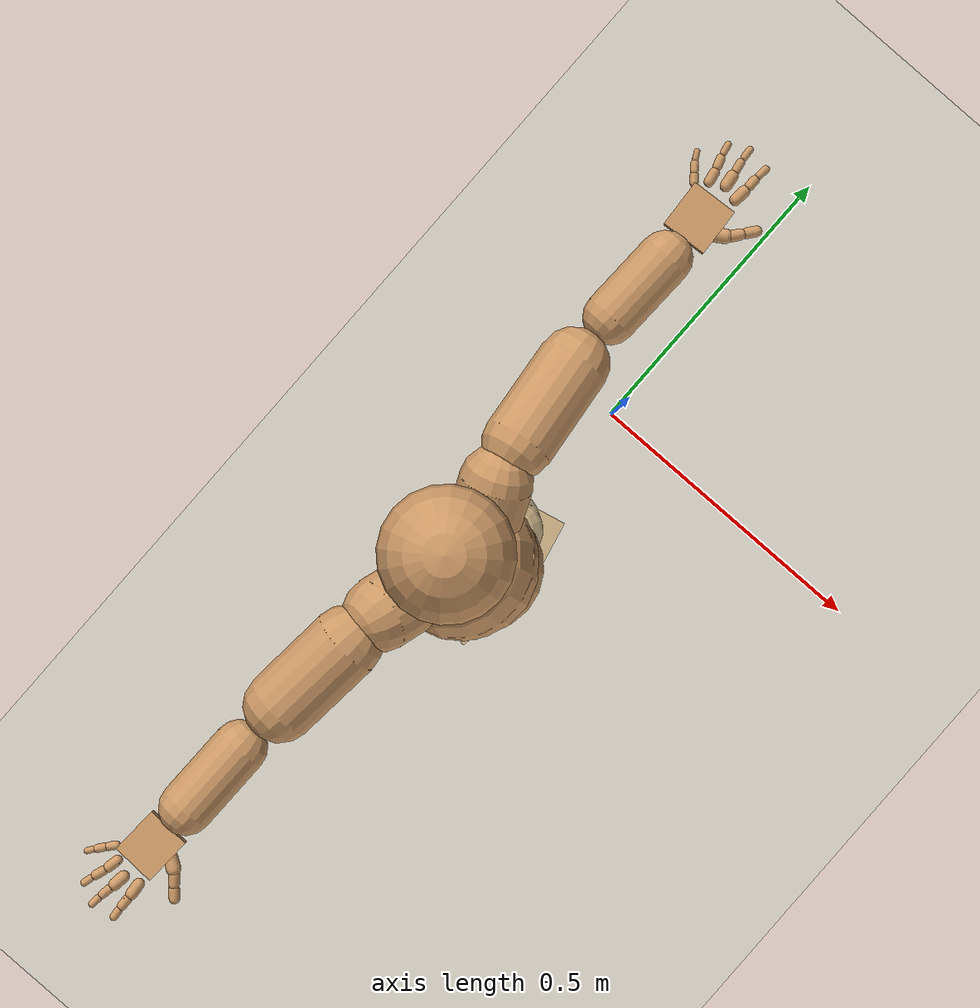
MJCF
<mujoco model="humanoid">
  <compiler coordinate="local" angle="radian"/>
  <default>
    <joint damping="0.0" armature="0.01" stiffness="0.0" limited="true"/>
    <geom conaffinity="1" condim="3" contype="7" margin="0.001" rgba="0.8 0.6 .4 1"/>
  </default>
  <asset>
    <texture type="skybox" builtin="gradient" rgb1=".4 .5 .6" rgb2="0 0 0" width="100" height="100"/>
    <texture builtin="flat" height="1278" mark="cross" markrgb="1 1 1" name="texgeom" random="0.01" rgb1="0.8 0.6 0.4" rgb2="0.8 0.6 0.4" type="cube" width="127"/>
    <texture builtin="checker" height="100" name="texplane" rgb1="0 0 0" rgb2="0.8 0.8 0.8" type="2d" width="100"/>
    <material name="MatPlane" reflectance="0.5" shininess="1" specular="1" texrepeat="60 60" texture="texplane"/>
    <material name="geom" texture="texgeom" texuniform="true"/>
  </asset>
  <worldbody>
    <light cutoff="100" diffuse="1 1 1" dir="-0 0 -1.3" directional="true" exponent="1" pos="0 0 1.3" specular=".1 .1 .1"/>
    <geom conaffinity="1" condim="3" name="floor" pos="0 0 0" rgba="0.8 0.9 0.8 1" size="100 100 .2" type="plane" material="MatPlane"/>
    <body name="Pelvis" pos="0.0004 -0.3375 0.0305">
      <freejoint name="Pelvis"/>
      <geom type="sphere" contype="1" conaffinity="1" density="500" size="0.1087" pos="0.0000 0.0000 0.0000" name="Pelvis"/>
      <body name="L_Hip" pos="0.0053 0.0766 -0.0887">
        <joint name="L_Hip_x" type="hinge" pos="0 0 0" axis="1 0 0" stiffness="800" damping="80" armature="0.02" range="-180.0000 180.0000"/>
        <joint name="L_Hip_y" type="hinge" pos="0 0 0" axis="0 1 0" stiffness="800" damping="80" armature="0.02" range="-180.0000 180.0000"/>
        <joint name="L_Hip_z" type="hinge" pos="0 0 0" axis="0 0 1" stiffness="800" damping="80" armature="0.02" range="-180.0000 180.0000"/>
        <geom type="capsule" contype="1" conaffinity="1" density="500" fromto="-0.0043 0.0033 -0.0650 -0.0171 0.0133 -0.2598" size="0.0566" name="L_Hip"/>
        <body name="L_Knee" pos="-0.0214 0.0166 -0.3248">
          <joint name="L_Knee_x" type="hinge" pos="0 0 0" axis="1 0 0" stiffness="800" damping="80" armature="0.02" range="-180.0000 180.0000"/>
          <joint name="L_Knee_y" type="hinge" pos="0 0 0" axis="0 1 0" stiffness="800" damping="80" armature="0.02" range="-180.0000 180.0000"/>
          <joint name="L_Knee_z" type="hinge" pos="0 0 0" axis="0 0 1" stiffness="800" damping="80" armature="0.02" range="-180.0000 180.0000"/>
          <geom type="capsule" contype="1" conaffinity="1" density="500" fromto="-0.0043 -0.0020 -0.0695 -0.0170 -0.0082 -0.2779" size="0.0525" name="L_Knee"/>
          <body name="L_Ankle" pos="-0.0213 -0.0102 -0.3474">
            <joint name="L_Ankle_x" type="hinge" pos="0 0 0" axis="1 0 0" stiffness="800" damping="80" armature="0.02" range="-180.0000 180.0000"/>
            <joint name="L_Ankle_y" type="hinge" pos="0 0 0" axis="0 1 0" stiffness="800" damping="80" armature="0.02" range="-180.0000 180.0000"/>
            <joint name="L_Ankle_z" type="hinge" pos="0 0 0" axis="0 0 1" stiffness="800" damping="80" armature="0.02" range="-180.0000 180.0000"/>
            <geom type="box" contype="1" conaffinity="1" density="500" pos="0.0507 0.0114 -0.0194" size="0.0796 0.0472 0.0195" quat="0.9939 0.0000 0.0000 0.1107" name="L_Ankle"/>
            <body name="L_Toe" pos="0.1014 0.0229 -0.0387">
              <joint name="L_Toe_x" type="hinge" pos="0 0 0" axis="1 0 0" stiffness="500" damping="50" armature="0.02" range="-180.0000 180.0000"/>
              <joint name="L_Toe_y" type="hinge" pos="0 0 0" axis="0 1 0" stiffness="500" damping="50" armature="0.02" range="-180.0000 180.0000"/>
              <joint name="L_Toe_z" type="hinge" pos="0 0 0" axis="0 0 1" stiffness="500" damping="50" armature="0.02" range="-180.0000 180.0000"/>
              <geom type="box" contype="1" conaffinity="1" density="500" pos="0.0000 0.0000 0.0202" size="0.0009 0.0023 0.001" quat="0.9930 0.0000 0.0000 0.1177" name="L_Toe"/>
            </body>
          </body>
        </body>
      </body>
      <body name="R_Hip" pos="0.0034 -0.0753 -0.0943">
        <joint name="R_Hip_x" type="hinge" pos="0 0 0" axis="1 0 0" stiffness="800" damping="80" armature="0.02" range="-180.0000 180.0000"/>
        <joint name="R_Hip_y" type="hinge" pos="0 0 0" axis="0 1 0" stiffness="800" damping="80" armature="0.02" range="-180.0000 180.0000"/>
        <joint name="R_Hip_z" type="hinge" pos="0 0 0" axis="0 0 1" stiffness="800" damping="80" armature="0.02" range="-180.0000 180.0000"/>
        <geom type="capsule" contype="1" conaffinity="1" density="500" fromto="-0.0029 -0.0041 -0.0643 -0.0117 -0.0164 -0.2570" size="0.0564" name="R_Hip"/>
        <body name="R_Knee" pos="-0.0146 -0.0206 -0.3213">
          <joint name="R_Knee_x" type="hinge" pos="0 0 0" axis="1 0 0" stiffness="800" damping="80" armature="0.02" range="-180.0000 180.0000"/>
          <joint name="R_Knee_y" type="hinge" pos="0 0 0" axis="0 1 0" stiffness="800" damping="80" armature="0.02" range="-180.0000 180.0000"/>
          <joint name="R_Knee_z" type="hinge" pos="0 0 0" axis="0 0 1" stiffness="800" damping="80" armature="0.02" range="-180.0000 180.0000"/>
          <geom type="capsule" contype="1" conaffinity="1" density="500" fromto="-0.0036 0.0010 -0.0678 -0.0145 0.0041 -0.2711" size="0.0524" name="R_Knee"/>
          <body name="R_Ankle" pos="-0.0181 0.0051 -0.3389">
            <joint name="R_Ankle_x" type="hinge" pos="0 0 0" axis="1 0 0" stiffness="800" damping="80" armature="0.02" range="-180.0000 180.0000"/>
            <joint name="R_Ankle_y" type="hinge" pos="0 0 0" axis="0 1 0" stiffness="800" damping="80" armature="0.02" range="-180.0000 180.0000"/>
            <joint name="R_Ankle_z" type="hinge" pos="0 0 0" axis="0 0 1" stiffness="800" damping="80" armature="0.02" range="-180.0000 180.0000"/>
            <geom type="box" contype="1" conaffinity="1" density="500" pos="0.0479 -0.0094 -0.0209" size="0.0796 0.0472 0.0195" quat="0.9953 0.0000 0.0000 -0.0964" name="R_Ankle"/>
            <body name="R_Toe" pos="0.0958 -0.0187 -0.0419">
              <joint name="R_Toe_x" type="hinge" pos="0 0 0" axis="1 0 0" stiffness="500" damping="50" armature="0.02" range="-180.0000 180.0000"/>
              <joint name="R_Toe_y" type="hinge" pos="0 0 0" axis="0 1 0" stiffness="500" damping="50" armature="0.02" range="-180.0000 180.0000"/>
              <joint name="R_Toe_z" type="hinge" pos="0 0 0" axis="0 0 1" stiffness="500" damping="50" armature="0.02" range="-180.0000 180.0000"/>
              <geom type="box" contype="1" conaffinity="1" density="500" pos="0.0000 0.0000 0.0218" size="0.0009 0.0023 0.001" quat="0.9964 0.0000 0.0000 -0.0846" name="R_Toe"/>
            </body>
          </body>
        </body>
      </body>
      <body name="Torso" pos="-0.0373 -0.0062 0.1031">
        <joint name="Torso_x" type="hinge" pos="0 0 0" axis="1 0 0" stiffness="1000" damping="100" armature="0.02" range="-180.0000 180.0000"/>
        <joint name="Torso_y" type="hinge" pos="0 0 0" axis="0 1 0" stiffness="1000" damping="100" armature="0.02" range="-180.0000 180.0000"/>
        <joint name="Torso_z" type="hinge" pos="0 0 0" axis="0 0 1" stiffness="1000" damping="100" armature="0.02" range="-180.0000 180.0000"/>
        <geom type="capsule" contype="1" conaffinity="1" density="500" fromto="-0.0093 0.0091 0.0601 -0.0062 0.0061 0.0401" size="0.0858" name="Torso"/>
        <body name="Spine" pos="-0.0155 0.0152 0.1002">
          <joint name="Spine_x" type="hinge" pos="0 0 0" axis="1 0 0" stiffness="1000" damping="100" armature="0.02" range="-180.0000 180.0000"/>
          <joint name="Spine_y" type="hinge" pos="0 0 0" axis="0 1 0" stiffness="1000" damping="100" armature="0.02" range="-180.0000 180.0000"/>
          <joint name="Spine_z" type="hinge" pos="0 0 0" axis="0 0 1" stiffness="1000" damping="100" armature="0.02" range="-180.0000 180.0000"/>
          <geom type="capsule" contype="1" conaffinity="1" density="500" fromto="0.0284 -0.0057 0.0236 0.0189 -0.0038 0.0158" size="0.0697" name="Spine"/>
          <body name="Chest" pos="0.0474 -0.0095 0.0394">
            <joint name="Chest_x" type="hinge" pos="0 0 0" axis="1 0 0" stiffness="1000" damping="100" armature="0.02" range="-180.0000 180.0000"/>
            <joint name="Chest_y" type="hinge" pos="0 0 0" axis="0 1 0" stiffness="1000" damping="100" armature="0.02" range="-180.0000 180.0000"/>
            <joint name="Chest_z" type="hinge" pos="0 0 0" axis="0 0 1" stiffness="1000" damping="100" armature="0.02" range="-180.0000 180.0000"/>
            <geom type="capsule" contype="1" conaffinity="1" density="500" fromto="-0.0267 -0.0017 0.0901 -0.0178 -0.0011 0.0601" size="0.1169" name="Chest"/>
            <body name="Neck" pos="-0.0639 -0.0061 0.2091">
              <joint name="Neck_x" type="hinge" pos="0 0 0" axis="1 0 0" stiffness="500" damping="50" armature="0.02" range="-180.0000 180.0000"/>
              <joint name="Neck_y" type="hinge" pos="0 0 0" axis="0 1 0" stiffness="500" damping="50" armature="0.02" range="-180.0000 180.0000"/>
              <joint name="Neck_z" type="hinge" pos="0 0 0" axis="0 0 1" stiffness="500" damping="50" armature="0.02" range="-180.0000 180.0000"/>
              <geom type="capsule" contype="1" conaffinity="1" density="500" fromto="0.0041 0.0019 0.0264 0.0163 0.0074 0.1054" size="0.042" name="Neck"/>
              <body name="Head" pos="0.0204 0.0093 0.1318">
                <joint name="Head_x" type="hinge" pos="0 0 0" axis="1 0 0" stiffness="500" damping="50" armature="0.02" range="-180.0000 180.0000"/>
                <joint name="Head_y" type="hinge" pos="0 0 0" axis="0 1 0" stiffness="500" damping="50" armature="0.02" range="-180.0000 180.0000"/>
                <joint name="Head_z" type="hinge" pos="0 0 0" axis="0 0 1" stiffness="500" damping="50" armature="0.02" range="-180.0000 180.0000"/>
                <geom type="sphere" contype="1" conaffinity="1" density="500" size="0.0969" pos="0.0000 0.0000 0.0000" name="Head"/>
              </body>
            </body>
            <body name="L_Thorax" pos="-0.0309 0.057 0.1229">
              <joint name="L_Thorax_x" type="hinge" pos="0 0 0" axis="1 0 0" stiffness="500" damping="50" armature="0.02" range="-180.0000 180.0000"/>
              <joint name="L_Thorax_y" type="hinge" pos="0 0 0" axis="0 1 0" stiffness="500" damping="50" armature="0.02" range="-180.0000 180.0000"/>
              <joint name="L_Thorax_z" type="hinge" pos="0 0 0" axis="0 0 1" stiffness="500" damping="50" armature="0.02" range="-180.0000 180.0000"/>
              <geom type="capsule" contype="1" conaffinity="1" density="500" fromto="-0.0073 0.0167 0.0087 -0.0291 0.0667 0.0349" size="0.0553" name="L_Thorax"/>
              <body name="L_Shoulder" pos="-0.0364 0.0834 0.0436">
                <joint name="L_Shoulder_x" type="hinge" pos="0 0 0" axis="1 0 0" stiffness="500" damping="50" armature="0.02" range="-180.0000 180.0000"/>
                <joint name="L_Shoulder_y" type="hinge" pos="0 0 0" axis="0 1 0" stiffness="500" damping="50" armature="0.02" range="-180.0000 180.0000"/>
                <joint name="L_Shoulder_z" type="hinge" pos="0 0 0" axis="0 0 1" stiffness="500" damping="50" armature="0.02" range="-180.0000 180.0000"/>
                <geom type="capsule" contype="1" conaffinity="1" density="500" fromto="-0.0054 0.0471 -0.0084 -0.0216 0.1883 -0.0338" size="0.0544" name="L_Shoulder"/>
                <body name="L_Elbow" pos="-0.027 0.2354 -0.0422">
                  <joint name="L_Elbow_x" type="hinge" pos="0 0 0" axis="1 0 0" stiffness="500" damping="50" armature="0.02" range="-720.0000 720.0000"/>
                  <joint name="L_Elbow_y" type="hinge" pos="0 0 0" axis="0 1 0" stiffness="500" damping="50" armature="0.02" range="-720.0000 720.0000"/>
                  <joint name="L_Elbow_z" type="hinge" pos="0 0 0" axis="0 0 1" stiffness="500" damping="50" armature="0.02" range="-720.0000 720.0000"/>
                  <geom type="capsule" contype="1" conaffinity="1" density="500" fromto="0.0014 0.0396 0.0018 0.0054 0.1583 0.0073" size="0.0408" name="L_Elbow"/>
                  <body name="L_Wrist" pos="0.0068 0.1979 0.0091">
                    <joint name="L_Wrist_x" type="hinge" pos="0 0 0" axis="1 0 0" stiffness="300" damping="30" armature="0.02" range="-180.0000 180.0000"/>
                    <joint name="L_Wrist_y" type="hinge" pos="0 0 0" axis="0 1 0" stiffness="300" damping="30" armature="0.02" range="-180.0000 180.0000"/>
                    <joint name="L_Wrist_z" type="hinge" pos="0 0 0" axis="0 0 1" stiffness="300" damping="30" armature="0.02" range="-180.0000 180.0000"/>
                    <geom type="box" contype="1" conaffinity="1" density="500" pos="-0.0024 0.0369 -0.0073" size="0.0378 0.0364 0.0071" quat="0.7299 0.0000 0.0000 -0.6836" name="L_Wrist"/>
                    <body name="L_Index1" pos="0.0194 0.0876 -0.0118">
                      <joint name="L_Index1_x" type="hinge" pos="0 0 0" axis="1 0 0" stiffness="100" damping="10" armature="0.02" range="-180.0000 180.0000"/>
                      <joint name="L_Index1_y" type="hinge" pos="0 0 0" axis="0 1 0" stiffness="100" damping="10" armature="0.02" range="-180.0000 180.0000"/>
                      <joint name="L_Index1_z" type="hinge" pos="0 0 0" axis="0 0 1" stiffness="100" damping="10" armature="0.02" range="-180.0000 180.0000"/>
                      <geom type="capsule" contype="1" conaffinity="1" density="500" fromto="0.0005 0.0059 0.0006 0.0021 0.0236 0.0023" size="0.0089" name="L_Index1"/>
                      <body name="L_Index2" pos="0.0026 0.0295 0.0029">
                        <joint name="L_Index2_x" type="hinge" pos="0 0 0" axis="1 0 0" stiffness="100" damping="10" armature="0.02" range="-180.0000 180.0000"/>
                        <joint name="L_Index2_y" type="hinge" pos="0 0 0" axis="0 1 0" stiffness="100" damping="10" armature="0.02" range="-180.0000 180.0000"/>
                        <joint name="L_Index2_z" type="hinge" pos="0 0 0" axis="0 0 1" stiffness="100" damping="10" armature="0.02" range="-180.0000 180.0000"/>
                        <geom type="capsule" contype="1" conaffinity="1" density="500" fromto="0.0001 0.0042 -0.0002 0.0002 0.0167 -0.0010" size="0.0072" name="L_Index2"/>
                        <body name="L_Index3" pos="0.0003 0.0208 -0.0012">
                          <joint name="L_Index3_x" type="hinge" pos="0 0 0" axis="1 0 0" stiffness="100" damping="10" armature="0.02" range="-180.0000 180.0000"/>
                          <joint name="L_Index3_y" type="hinge" pos="0 0 0" axis="0 1 0" stiffness="100" damping="10" armature="0.02" range="-180.0000 180.0000"/>
                          <joint name="L_Index3_z" type="hinge" pos="0 0 0" axis="0 0 1" stiffness="100" damping="10" armature="0.02" range="-180.0000 180.0000"/>
                          <geom type="capsule" contype="1" conaffinity="1" density="500" fromto="0.0005 0.0046 0.0002 0.0018 0.0183 0.0006" size="0.0059" name="L_Index3"/>
                        </body>
                      </body>
                    </body>
                    <body name="L_Middle1" pos="-0.0033 0.0941 -0.0096">
                      <joint name="L_Middle1_x" type="hinge" pos="0 0 0" axis="1 0 0" stiffness="100" damping="10" armature="0.02" range="-180.0000 180.0000"/>
                      <joint name="L_Middle1_y" type="hinge" pos="0 0 0" axis="0 1 0" stiffness="100" damping="10" armature="0.02" range="-180.0000 180.0000"/>
                      <joint name="L_Middle1_z" type="hinge" pos="0 0 0" axis="0 0 1" stiffness="100" damping="10" armature="0.02" range="-180.0000 180.0000"/>
                      <geom type="capsule" contype="1" conaffinity="1" density="500" fromto="-0.0008 0.0056 0.0003 -0.0031 0.0223 0.0012" size="0.0092" name="L_Middle1"/>
                      <body name="L_Middle2" pos="-0.0039 0.0279 0.0015">
                        <joint name="L_Middle2_x" type="hinge" pos="0 0 0" axis="1 0 0" stiffness="100" damping="10" armature="0.02" range="-180.0000 180.0000"/>
                        <joint name="L_Middle2_y" type="hinge" pos="0 0 0" axis="0 1 0" stiffness="100" damping="10" armature="0.02" range="-180.0000 180.0000"/>
                        <joint name="L_Middle2_z" type="hinge" pos="0 0 0" axis="0 0 1" stiffness="100" damping="10" armature="0.02" range="-180.0000 180.0000"/>
                        <geom type="capsule" contype="1" conaffinity="1" density="500" fromto="-0.0007 0.0043 -0.0001 -0.0030 0.0172 -0.0004" size="0.0067" name="L_Middle2"/>
                        <body name="L_Middle3" pos="-0.0037 0.0215 -0.0005">
                          <joint name="L_Middle3_x" type="hinge" pos="0 0 0" axis="1 0 0" stiffness="100" damping="10" armature="0.02" range="-180.0000 180.0000"/>
                          <joint name="L_Middle3_y" type="hinge" pos="0 0 0" axis="0 1 0" stiffness="100" damping="10" armature="0.02" range="-180.0000 180.0000"/>
                          <joint name="L_Middle3_z" type="hinge" pos="0 0 0" axis="0 0 1" stiffness="100" damping="10" armature="0.02" range="-180.0000 180.0000"/>
                          <geom type="capsule" contype="1" conaffinity="1" density="500" fromto="-0.0003 0.0047 0.0003 -0.0014 0.0188 0.0012" size="0.0055" name="L_Middle3"/>
                        </body>
                      </body>
                    </body>
                    <body name="L_Pinky1" pos="-0.0405 0.071 -0.0181">
                      <joint name="L_Pinky1_x" type="hinge" pos="0 0 0" axis="1 0 0" stiffness="100" damping="10" armature="0.02" range="-180.0000 180.0000"/>
                      <joint name="L_Pinky1_y" type="hinge" pos="0 0 0" axis="0 1 0" stiffness="100" damping="10" armature="0.02" range="-180.0000 180.0000"/>
                      <joint name="L_Pinky1_z" type="hinge" pos="0 0 0" axis="0 0 1" stiffness="100" damping="10" armature="0.02" range="-180.0000 180.0000"/>
                      <geom type="capsule" contype="1" conaffinity="1" density="500" fromto="-0.0023 0.0027 -0.0001 -0.0092 0.0110 -0.0004" size="0.0065" name="L_Pinky1"/>
                      <body name="L_Pinky2" pos="-0.0115 0.0137 -0.0005">
                        <joint name="L_Pinky2_x" type="hinge" pos="0 0 0" axis="1 0 0" stiffness="100" damping="10" armature="0.02" range="-180.0000 180.0000"/>
                        <joint name="L_Pinky2_y" type="hinge" pos="0 0 0" axis="0 1 0" stiffness="100" damping="10" armature="0.02" range="-180.0000 180.0000"/>
                        <joint name="L_Pinky2_z" type="hinge" pos="0 0 0" axis="0 0 1" stiffness="100" damping="10" armature="0.02" range="-180.0000 180.0000"/>
                        <geom type="capsule" contype="1" conaffinity="1" density="500" fromto="-0.0022 0.0028 -0.0002 -0.0086 0.0112 -0.0008" size="0.0063" name="L_Pinky2"/>
                        <body name="L_Pinky3" pos="-0.0108 0.014 -0.001">
                          <joint name="L_Pinky3_x" type="hinge" pos="0 0 0" axis="1 0 0" stiffness="100" damping="10" armature="0.02" range="-180.0000 180.0000"/>
                          <joint name="L_Pinky3_y" type="hinge" pos="0 0 0" axis="0 1 0" stiffness="100" damping="10" armature="0.02" range="-180.0000 180.0000"/>
                          <joint name="L_Pinky3_z" type="hinge" pos="0 0 0" axis="0 0 1" stiffness="100" damping="10" armature="0.02" range="-180.0000 180.0000"/>
                          <geom type="capsule" contype="1" conaffinity="1" density="500" fromto="-0.0018 0.0032 0.0002 -0.0070 0.0128 0.0008" size="0.0046" name="L_Pinky3"/>
                        </body>
                      </body>
                    </body>
                    <body name="L_Ring1" pos="-0.0256 0.0831 -0.0127">
                      <joint name="L_Ring1_x" type="hinge" pos="0 0 0" axis="1 0 0" stiffness="100" damping="10" armature="0.02" range="-180.0000 180.0000"/>
                      <joint name="L_Ring1_y" type="hinge" pos="0 0 0" axis="0 1 0" stiffness="100" damping="10" armature="0.02" range="-180.0000 180.0000"/>
                      <joint name="L_Ring1_z" type="hinge" pos="0 0 0" axis="0 0 1" stiffness="100" damping="10" armature="0.02" range="-180.0000 180.0000"/>
                      <geom type="capsule" contype="1" conaffinity="1" density="500" fromto="-0.0011 0.0051 0.0003 -0.0042 0.0204 0.0013" size="0.0079" name="L_Ring1"/>
                      <body name="L_Ring2" pos="-0.0053 0.0256 0.0017">
                        <joint name="L_Ring2_x" type="hinge" pos="0 0 0" axis="1 0 0" stiffness="100" damping="10" armature="0.02" range="-180.0000 180.0000"/>
                        <joint name="L_Ring2_y" type="hinge" pos="0 0 0" axis="0 1 0" stiffness="100" damping="10" armature="0.02" range="-180.0000 180.0000"/>
                        <joint name="L_Ring2_z" type="hinge" pos="0 0 0" axis="0 0 1" stiffness="100" damping="10" armature="0.02" range="-180.0000 180.0000"/>
                        <geom type="capsule" contype="1" conaffinity="1" density="500" fromto="-0.0014 0.0041 -0.0002 -0.0055 0.0166 -0.0009" size="0.0071" name="L_Ring2"/>
                        <body name="L_Ring3" pos="-0.0068 0.0207 -0.0011">
                          <joint name="L_Ring3_x" type="hinge" pos="0 0 0" axis="1 0 0" stiffness="100" damping="10" armature="0.02" range="-180.0000 180.0000"/>
                          <joint name="L_Ring3_y" type="hinge" pos="0 0 0" axis="0 1 0" stiffness="100" damping="10" armature="0.02" range="-180.0000 180.0000"/>
                          <joint name="L_Ring3_z" type="hinge" pos="0 0 0" axis="0 0 1" stiffness="100" damping="10" armature="0.02" range="-180.0000 180.0000"/>
                          <geom type="capsule" contype="1" conaffinity="1" density="500" fromto="-0.0010 0.0045 0.0002 -0.0039 0.0182 0.0007" size="0.0053" name="L_Ring3"/>
                        </body>
                      </body>
                    </body>
                    <body name="L_Thumb1" pos="0.0258 0.0333 -0.0203">
                      <joint name="L_Thumb1_x" type="hinge" pos="0 0 0" axis="1 0 0" stiffness="100" damping="10" armature="0.02" range="-180.0000 180.0000"/>
                      <joint name="L_Thumb1_y" type="hinge" pos="0 0 0" axis="0 1 0" stiffness="100" damping="10" armature="0.02" range="-180.0000 180.0000"/>
                      <joint name="L_Thumb1_z" type="hinge" pos="0 0 0" axis="0 0 1" stiffness="100" damping="10" armature="0.02" range="-180.0000 180.0000"/>
                      <geom type="capsule" contype="1" conaffinity="1" density="500" fromto="0.0045 0.0029 0.0003 0.0179 0.0116 0.0010" size="0.0111" name="L_Thumb1"/>
                      <body name="L_Thumb2" pos="0.0224 0.0145 0.0013">
                        <joint name="L_Thumb2_x" type="hinge" pos="0 0 0" axis="1 0 0" stiffness="100" damping="10" armature="0.02" range="-180.0000 180.0000"/>
                        <joint name="L_Thumb2_y" type="hinge" pos="0 0 0" axis="0 1 0" stiffness="100" damping="10" armature="0.02" range="-180.0000 180.0000"/>
                        <joint name="L_Thumb2_z" type="hinge" pos="0 0 0" axis="0 0 1" stiffness="100" damping="10" armature="0.02" range="-180.0000 180.0000"/>
                        <geom type="capsule" contype="1" conaffinity="1" density="500" fromto="0.0026 0.0036 -0.0011 0.0106 0.0145 -0.0043" size="0.0087" name="L_Thumb2"/>
                        <body name="L_Thumb3" pos="0.0132 0.0181 -0.0054">
                          <joint name="L_Thumb3_x" type="hinge" pos="0 0 0" axis="1 0 0" stiffness="100" damping="10" armature="0.02" range="-180.0000 180.0000"/>
                          <joint name="L_Thumb3_y" type="hinge" pos="0 0 0" axis="0 1 0" stiffness="100" damping="10" armature="0.02" range="-180.0000 180.0000"/>
                          <joint name="L_Thumb3_z" type="hinge" pos="0 0 0" axis="0 0 1" stiffness="100" damping="10" armature="0.02" range="-180.0000 180.0000"/>
                          <geom type="capsule" contype="1" conaffinity="1" density="500" fromto="0.0030 0.0040 -0.0007 0.0122 0.0161 -0.0027" size="0.0082" name="L_Thumb3"/>
                        </body>
                      </body>
                    </body>
                  </body>
                </body>
              </body>
            </body>
            <body name="R_Thorax" pos="-0.0388 -0.0594 0.1186">
              <joint name="R_Thorax_x" type="hinge" pos="0 0 0" axis="1 0 0" stiffness="500" damping="50" armature="0.02" range="-180.0000 180.0000"/>
              <joint name="R_Thorax_y" type="hinge" pos="0 0 0" axis="0 1 0" stiffness="500" damping="50" armature="0.02" range="-180.0000 180.0000"/>
              <joint name="R_Thorax_z" type="hinge" pos="0 0 0" axis="0 0 1" stiffness="500" damping="50" armature="0.02" range="-180.0000 180.0000"/>
              <geom type="capsule" contype="1" conaffinity="1" density="500" fromto="-0.0055 -0.0180 0.0091 -0.0220 -0.0719 0.0364" size="0.0567" name="R_Thorax"/>
              <body name="R_Shoulder" pos="-0.0275 -0.0899 0.0454">
                <joint name="R_Shoulder_x" type="hinge" pos="0 0 0" axis="1 0 0" stiffness="500" damping="50" armature="0.02" range="-180.0000 180.0000"/>
                <joint name="R_Shoulder_y" type="hinge" pos="0 0 0" axis="0 1 0" stiffness="500" damping="50" armature="0.02" range="-180.0000 180.0000"/>
                <joint name="R_Shoulder_z" type="hinge" pos="0 0 0" axis="0 0 1" stiffness="500" damping="50" armature="0.02" range="-180.0000 180.0000"/>
                <geom type="capsule" contype="1" conaffinity="1" density="500" fromto="-0.0042 -0.0454 -0.0073 -0.0167 -0.1817 -0.0294" size="0.0549" name="R_Shoulder"/>
                <body name="R_Elbow" pos="-0.0208 -0.2271 -0.0367">
                  <joint name="R_Elbow_x" type="hinge" pos="0 0 0" axis="1 0 0" stiffness="500" damping="50" armature="0.02" range="-720.0000 720.0000"/>
                  <joint name="R_Elbow_y" type="hinge" pos="0 0 0" axis="0 1 0" stiffness="500" damping="50" armature="0.02" range="-720.0000 720.0000"/>
                  <joint name="R_Elbow_z" type="hinge" pos="0 0 0" axis="0 0 1" stiffness="500" damping="50" armature="0.02" range="-720.0000 720.0000"/>
                  <geom type="capsule" contype="1" conaffinity="1" density="500" fromto="-0.0004 -0.0396 0.0010 -0.0016 -0.1583 0.0041" size="0.0409" name="R_Elbow"/>
                  <body name="R_Wrist" pos="-0.002 -0.1979 0.0051">
                    <joint name="R_Wrist_x" type="hinge" pos="0 0 0" axis="1 0 0" stiffness="300" damping="30" armature="0.02" range="-180.0000 180.0000"/>
                    <joint name="R_Wrist_y" type="hinge" pos="0 0 0" axis="0 1 0" stiffness="300" damping="30" armature="0.02" range="-180.0000 180.0000"/>
                    <joint name="R_Wrist_z" type="hinge" pos="0 0 0" axis="0 0 1" stiffness="300" damping="30" armature="0.02" range="-180.0000 180.0000"/>
                    <geom type="box" contype="1" conaffinity="1" density="500" pos="-0.0016 -0.0365 -0.0067" size="0.0378 0.0341 0.0074" quat="0.7227 0.0000 0.0000 0.6911" name="R_Wrist"/>
                    <body name="R_Index1" pos="0.021 -0.0867 -0.0108">
                      <joint name="R_Index1_x" type="hinge" pos="0 0 0" axis="1 0 0" stiffness="100" damping="10" armature="0.02" range="-180.0000 180.0000"/>
                      <joint name="R_Index1_y" type="hinge" pos="0 0 0" axis="0 1 0" stiffness="100" damping="10" armature="0.02" range="-180.0000 180.0000"/>
                      <joint name="R_Index1_z" type="hinge" pos="0 0 0" axis="0 0 1" stiffness="100" damping="10" armature="0.02" range="-180.0000 180.0000"/>
                      <geom type="capsule" contype="1" conaffinity="1" density="500" fromto="0.0005 -0.0059 0.0006 0.0021 -0.0236 0.0023" size="0.0089" name="R_Index1"/>
                      <body name="R_Index2" pos="0.0026 -0.0295 0.0029">
                        <joint name="R_Index2_x" type="hinge" pos="0 0 0" axis="1 0 0" stiffness="100" damping="10" armature="0.02" range="-180.0000 180.0000"/>
                        <joint name="R_Index2_y" type="hinge" pos="0 0 0" axis="0 1 0" stiffness="100" damping="10" armature="0.02" range="-180.0000 180.0000"/>
                        <joint name="R_Index2_z" type="hinge" pos="0 0 0" axis="0 0 1" stiffness="100" damping="10" armature="0.02" range="-180.0000 180.0000"/>
                        <geom type="capsule" contype="1" conaffinity="1" density="500" fromto="0.0001 -0.0042 -0.0002 0.0002 -0.0167 -0.0010" size="0.0072" name="R_Index2"/>
                        <body name="R_Index3" pos="0.0003 -0.0208 -0.0012">
                          <joint name="R_Index3_x" type="hinge" pos="0 0 0" axis="1 0 0" stiffness="100" damping="10" armature="0.02" range="-180.0000 180.0000"/>
                          <joint name="R_Index3_y" type="hinge" pos="0 0 0" axis="0 1 0" stiffness="100" damping="10" armature="0.02" range="-180.0000 180.0000"/>
                          <joint name="R_Index3_z" type="hinge" pos="0 0 0" axis="0 0 1" stiffness="100" damping="10" armature="0.02" range="-180.0000 180.0000"/>
                          <geom type="capsule" contype="1" conaffinity="1" density="500" fromto="0.0005 -0.0038 0.0002 0.0018 -0.0151 0.0006" size="0.0062" name="R_Index3"/>
                        </body>
                      </body>
                    </body>
                    <body name="R_Middle1" pos="-0.0017 -0.0932 -0.0086">
                      <joint name="R_Middle1_x" type="hinge" pos="0 0 0" axis="1 0 0" stiffness="100" damping="10" armature="0.02" range="-180.0000 180.0000"/>
                      <joint name="R_Middle1_y" type="hinge" pos="0 0 0" axis="0 1 0" stiffness="100" damping="10" armature="0.02" range="-180.0000 180.0000"/>
                      <joint name="R_Middle1_z" type="hinge" pos="0 0 0" axis="0 0 1" stiffness="100" damping="10" armature="0.02" range="-180.0000 180.0000"/>
                      <geom type="capsule" contype="1" conaffinity="1" density="500" fromto="-0.0008 -0.0056 0.0003 -0.0031 -0.0223 0.0012" size="0.0092" name="R_Middle1"/>
                      <body name="R_Middle2" pos="-0.0039 -0.0279 0.0015">
                        <joint name="R_Middle2_x" type="hinge" pos="0 0 0" axis="1 0 0" stiffness="100" damping="10" armature="0.02" range="-180.0000 180.0000"/>
                        <joint name="R_Middle2_y" type="hinge" pos="0 0 0" axis="0 1 0" stiffness="100" damping="10" armature="0.02" range="-180.0000 180.0000"/>
                        <joint name="R_Middle2_z" type="hinge" pos="0 0 0" axis="0 0 1" stiffness="100" damping="10" armature="0.02" range="-180.0000 180.0000"/>
                        <geom type="capsule" contype="1" conaffinity="1" density="500" fromto="-0.0007 -0.0043 -0.0001 -0.0030 -0.0172 -0.0004" size="0.0067" name="R_Middle2"/>
                        <body name="R_Middle3" pos="-0.0037 -0.0215 -0.0006">
                          <joint name="R_Middle3_x" type="hinge" pos="0 0 0" axis="1 0 0" stiffness="100" damping="10" armature="0.02" range="-180.0000 180.0000"/>
                          <joint name="R_Middle3_y" type="hinge" pos="0 0 0" axis="0 1 0" stiffness="100" damping="10" armature="0.02" range="-180.0000 180.0000"/>
                          <joint name="R_Middle3_z" type="hinge" pos="0 0 0" axis="0 0 1" stiffness="100" damping="10" armature="0.02" range="-180.0000 180.0000"/>
                          <geom type="capsule" contype="1" conaffinity="1" density="500" fromto="-0.0003 -0.0039 0.0003 -0.0014 -0.0156 0.0012" size="0.0058" name="R_Middle3"/>
                        </body>
                      </body>
                    </body>
                    <body name="R_Pinky1" pos="-0.0389 -0.0702 -0.0171">
                      <joint name="R_Pinky1_x" type="hinge" pos="0 0 0" axis="1 0 0" stiffness="100" damping="10" armature="0.02" range="-180.0000 180.0000"/>
                      <joint name="R_Pinky1_y" type="hinge" pos="0 0 0" axis="0 1 0" stiffness="100" damping="10" armature="0.02" range="-180.0000 180.0000"/>
                      <joint name="R_Pinky1_z" type="hinge" pos="0 0 0" axis="0 0 1" stiffness="100" damping="10" armature="0.02" range="-180.0000 180.0000"/>
                      <geom type="capsule" contype="1" conaffinity="1" density="500" fromto="-0.0023 -0.0027 -0.0001 -0.0092 -0.0110 -0.0004" size="0.0065" name="R_Pinky1"/>
                      <body name="R_Pinky2" pos="-0.0115 -0.0137 -0.0005">
                        <joint name="R_Pinky2_x" type="hinge" pos="0 0 0" axis="1 0 0" stiffness="100" damping="10" armature="0.02" range="-180.0000 180.0000"/>
                        <joint name="R_Pinky2_y" type="hinge" pos="0 0 0" axis="0 1 0" stiffness="100" damping="10" armature="0.02" range="-180.0000 180.0000"/>
                        <joint name="R_Pinky2_z" type="hinge" pos="0 0 0" axis="0 0 1" stiffness="100" damping="10" armature="0.02" range="-180.0000 180.0000"/>
                        <geom type="capsule" contype="1" conaffinity="1" density="500" fromto="-0.0022 -0.0028 -0.0002 -0.0086 -0.0112 -0.0008" size="0.0063" name="R_Pinky2"/>
                        <body name="R_Pinky3" pos="-0.0108 -0.014 -0.001">
                          <joint name="R_Pinky3_x" type="hinge" pos="0 0 0" axis="1 0 0" stiffness="100" damping="10" armature="0.02" range="-180.0000 180.0000"/>
                          <joint name="R_Pinky3_y" type="hinge" pos="0 0 0" axis="0 1 0" stiffness="100" damping="10" armature="0.02" range="-180.0000 180.0000"/>
                          <joint name="R_Pinky3_z" type="hinge" pos="0 0 0" axis="0 0 1" stiffness="100" damping="10" armature="0.02" range="-180.0000 180.0000"/>
                          <geom type="capsule" contype="1" conaffinity="1" density="500" fromto="-0.0018 -0.0024 0.0002 -0.0070 -0.0096 0.0008" size="0.0049" name="R_Pinky3"/>
                        </body>
                      </body>
                    </body>
                    <body name="R_Ring1" pos="-0.024 -0.0822 -0.0117">
                      <joint name="R_Ring1_x" type="hinge" pos="0 0 0" axis="1 0 0" stiffness="100" damping="10" armature="0.02" range="-180.0000 180.0000"/>
                      <joint name="R_Ring1_y" type="hinge" pos="0 0 0" axis="0 1 0" stiffness="100" damping="10" armature="0.02" range="-180.0000 180.0000"/>
                      <joint name="R_Ring1_z" type="hinge" pos="0 0 0" axis="0 0 1" stiffness="100" damping="10" armature="0.02" range="-180.0000 180.0000"/>
                      <geom type="capsule" contype="1" conaffinity="1" density="500" fromto="-0.0011 -0.0051 0.0003 -0.0042 -0.0204 0.0013" size="0.0079" name="R_Ring1"/>
                      <body name="R_Ring2" pos="-0.0053 -0.0256 0.0017">
                        <joint name="R_Ring2_x" type="hinge" pos="0 0 0" axis="1 0 0" stiffness="100" damping="10" armature="0.02" range="-180.0000 180.0000"/>
                        <joint name="R_Ring2_y" type="hinge" pos="0 0 0" axis="0 1 0" stiffness="100" damping="10" armature="0.02" range="-180.0000 180.0000"/>
                        <joint name="R_Ring2_z" type="hinge" pos="0 0 0" axis="0 0 1" stiffness="100" damping="10" armature="0.02" range="-180.0000 180.0000"/>
                        <geom type="capsule" contype="1" conaffinity="1" density="500" fromto="-0.0014 -0.0041 -0.0002 -0.0055 -0.0166 -0.0009" size="0.0071" name="R_Ring2"/>
                        <body name="R_Ring3" pos="-0.0068 -0.0207 -0.0011">
                          <joint name="R_Ring3_x" type="hinge" pos="0 0 0" axis="1 0 0" stiffness="100" damping="10" armature="0.02" range="-180.0000 180.0000"/>
                          <joint name="R_Ring3_y" type="hinge" pos="0 0 0" axis="0 1 0" stiffness="100" damping="10" armature="0.02" range="-180.0000 180.0000"/>
                          <joint name="R_Ring3_z" type="hinge" pos="0 0 0" axis="0 0 1" stiffness="100" damping="10" armature="0.02" range="-180.0000 180.0000"/>
                          <geom type="capsule" contype="1" conaffinity="1" density="500" fromto="-0.0010 -0.0037 0.0002 -0.0039 -0.0150 0.0007" size="0.0056" name="R_Ring3"/>
                        </body>
                      </body>
                    </body>
                    <body name="R_Thumb1" pos="0.0273 -0.0324 -0.0193">
                      <joint name="R_Thumb1_x" type="hinge" pos="0 0 0" axis="1 0 0" stiffness="100" damping="10" armature="0.02" range="-180.0000 180.0000"/>
                      <joint name="R_Thumb1_y" type="hinge" pos="0 0 0" axis="0 1 0" stiffness="100" damping="10" armature="0.02" range="-180.0000 180.0000"/>
                      <joint name="R_Thumb1_z" type="hinge" pos="0 0 0" axis="0 0 1" stiffness="100" damping="10" armature="0.02" range="-180.0000 180.0000"/>
                      <geom type="capsule" contype="1" conaffinity="1" density="500" fromto="0.0045 -0.0029 0.0003 0.0179 -0.0116 0.0010" size="0.0111" name="R_Thumb1"/>
                      <body name="R_Thumb2" pos="0.0224 -0.0145 0.0013">
                        <joint name="R_Thumb2_x" type="hinge" pos="0 0 0" axis="1 0 0" stiffness="100" damping="10" armature="0.02" range="-180.0000 180.0000"/>
                        <joint name="R_Thumb2_y" type="hinge" pos="0 0 0" axis="0 1 0" stiffness="100" damping="10" armature="0.02" range="-180.0000 180.0000"/>
                        <joint name="R_Thumb2_z" type="hinge" pos="0 0 0" axis="0 0 1" stiffness="100" damping="10" armature="0.02" range="-180.0000 180.0000"/>
                        <geom type="capsule" contype="1" conaffinity="1" density="500" fromto="0.0026 -0.0036 -0.0011 0.0106 -0.0145 -0.0043" size="0.0087" name="R_Thumb2"/>
                        <body name="R_Thumb3" pos="0.0132 -0.0181 -0.0054">
                          <joint name="R_Thumb3_x" type="hinge" pos="0 0 0" axis="1 0 0" stiffness="100" damping="10" armature="0.02" range="-180.0000 180.0000"/>
                          <joint name="R_Thumb3_y" type="hinge" pos="0 0 0" axis="0 1 0" stiffness="100" damping="10" armature="0.02" range="-180.0000 180.0000"/>
                          <joint name="R_Thumb3_z" type="hinge" pos="0 0 0" axis="0 0 1" stiffness="100" damping="10" armature="0.02" range="-180.0000 180.0000"/>
                          <geom type="capsule" contype="1" conaffinity="1" density="500" fromto="0.0030 -0.0032 -0.0007 0.0122 -0.0129 -0.0027" size="0.0085" name="R_Thumb3"/>
                        </body>
                      </body>
                    </body>
                  </body>
                </body>
              </body>
            </body>
          </body>
        </body>
      </body>
    </body>
  </worldbody>
  <actuator>
    <motor name="L_Hip_x" joint="L_Hip_x" gear="500"/>
    <motor name="L_Hip_y" joint="L_Hip_y" gear="500"/>
    <motor name="L_Hip_z" joint="L_Hip_z" gear="500"/>
    <motor name="L_Knee_x" joint="L_Knee_x" gear="500"/>
    <motor name="L_Knee_y" joint="L_Knee_y" gear="500"/>
    <motor name="L_Knee_z" joint="L_Knee_z" gear="500"/>
    <motor name="L_Ankle_x" joint="L_Ankle_x" gear="500"/>
    <motor name="L_Ankle_y" joint="L_Ankle_y" gear="500"/>
    <motor name="L_Ankle_z" joint="L_Ankle_z" gear="500"/>
    <motor name="L_Toe_x" joint="L_Toe_x" gear="500"/>
    <motor name="L_Toe_y" joint="L_Toe_y" gear="500"/>
    <motor name="L_Toe_z" joint="L_Toe_z" gear="500"/>
    <motor name="R_Hip_x" joint="R_Hip_x" gear="500"/>
    <motor name="R_Hip_y" joint="R_Hip_y" gear="500"/>
    <motor name="R_Hip_z" joint="R_Hip_z" gear="500"/>
    <motor name="R_Knee_x" joint="R_Knee_x" gear="500"/>
    <motor name="R_Knee_y" joint="R_Knee_y" gear="500"/>
    <motor name="R_Knee_z" joint="R_Knee_z" gear="500"/>
    <motor name="R_Ankle_x" joint="R_Ankle_x" gear="500"/>
    <motor name="R_Ankle_y" joint="R_Ankle_y" gear="500"/>
    <motor name="R_Ankle_z" joint="R_Ankle_z" gear="500"/>
    <motor name="R_Toe_x" joint="R_Toe_x" gear="500"/>
    <motor name="R_Toe_y" joint="R_Toe_y" gear="500"/>
    <motor name="R_Toe_z" joint="R_Toe_z" gear="500"/>
    <motor name="Torso_x" joint="Torso_x" gear="500"/>
    <motor name="Torso_y" joint="Torso_y" gear="500"/>
    <motor name="Torso_z" joint="Torso_z" gear="500"/>
    <motor name="Spine_x" joint="Spine_x" gear="500"/>
    <motor name="Spine_y" joint="Spine_y" gear="500"/>
    <motor name="Spine_z" joint="Spine_z" gear="500"/>
    <motor name="Chest_x" joint="Chest_x" gear="500"/>
    <motor name="Chest_y" joint="Chest_y" gear="500"/>
    <motor name="Chest_z" joint="Chest_z" gear="500"/>
    <motor name="Neck_x" joint="Neck_x" gear="500"/>
    <motor name="Neck_y" joint="Neck_y" gear="500"/>
    <motor name="Neck_z" joint="Neck_z" gear="500"/>
    <motor name="Head_x" joint="Head_x" gear="500"/>
    <motor name="Head_y" joint="Head_y" gear="500"/>
    <motor name="Head_z" joint="Head_z" gear="500"/>
    <motor name="L_Thorax_x" joint="L_Thorax_x" gear="500"/>
    <motor name="L_Thorax_y" joint="L_Thorax_y" gear="500"/>
    <motor name="L_Thorax_z" joint="L_Thorax_z" gear="500"/>
    <motor name="L_Shoulder_x" joint="L_Shoulder_x" gear="500"/>
    <motor name="L_Shoulder_y" joint="L_Shoulder_y" gear="500"/>
    <motor name="L_Shoulder_z" joint="L_Shoulder_z" gear="500"/>
    <motor name="L_Elbow_x" joint="L_Elbow_x" gear="500"/>
    <motor name="L_Elbow_y" joint="L_Elbow_y" gear="500"/>
    <motor name="L_Elbow_z" joint="L_Elbow_z" gear="500"/>
    <motor name="L_Wrist_x" joint="L_Wrist_x" gear="500"/>
    <motor name="L_Wrist_y" joint="L_Wrist_y" gear="500"/>
    <motor name="L_Wrist_z" joint="L_Wrist_z" gear="500"/>
    <motor name="L_Index1_x" joint="L_Index1_x" gear="500"/>
    <motor name="L_Index1_y" joint="L_Index1_y" gear="500"/>
    <motor name="L_Index1_z" joint="L_Index1_z" gear="500"/>
    <motor name="L_Index2_x" joint="L_Index2_x" gear="500"/>
    <motor name="L_Index2_y" joint="L_Index2_y" gear="500"/>
    <motor name="L_Index2_z" joint="L_Index2_z" gear="500"/>
    <motor name="L_Index3_x" joint="L_Index3_x" gear="500"/>
    <motor name="L_Index3_y" joint="L_Index3_y" gear="500"/>
    <motor name="L_Index3_z" joint="L_Index3_z" gear="500"/>
    <motor name="L_Middle1_x" joint="L_Middle1_x" gear="500"/>
    <motor name="L_Middle1_y" joint="L_Middle1_y" gear="500"/>
    <motor name="L_Middle1_z" joint="L_Middle1_z" gear="500"/>
    <motor name="L_Middle2_x" joint="L_Middle2_x" gear="500"/>
    <motor name="L_Middle2_y" joint="L_Middle2_y" gear="500"/>
    <motor name="L_Middle2_z" joint="L_Middle2_z" gear="500"/>
    <motor name="L_Middle3_x" joint="L_Middle3_x" gear="500"/>
    <motor name="L_Middle3_y" joint="L_Middle3_y" gear="500"/>
    <motor name="L_Middle3_z" joint="L_Middle3_z" gear="500"/>
    <motor name="L_Pinky1_x" joint="L_Pinky1_x" gear="500"/>
    <motor name="L_Pinky1_y" joint="L_Pinky1_y" gear="500"/>
    <motor name="L_Pinky1_z" joint="L_Pinky1_z" gear="500"/>
    <motor name="L_Pinky2_x" joint="L_Pinky2_x" gear="500"/>
    <motor name="L_Pinky2_y" joint="L_Pinky2_y" gear="500"/>
    <motor name="L_Pinky2_z" joint="L_Pinky2_z" gear="500"/>
    <motor name="L_Pinky3_x" joint="L_Pinky3_x" gear="500"/>
    <motor name="L_Pinky3_y" joint="L_Pinky3_y" gear="500"/>
    <motor name="L_Pinky3_z" joint="L_Pinky3_z" gear="500"/>
    <motor name="L_Ring1_x" joint="L_Ring1_x" gear="500"/>
    <motor name="L_Ring1_y" joint="L_Ring1_y" gear="500"/>
    <motor name="L_Ring1_z" joint="L_Ring1_z" gear="500"/>
    <motor name="L_Ring2_x" joint="L_Ring2_x" gear="500"/>
    <motor name="L_Ring2_y" joint="L_Ring2_y" gear="500"/>
    <motor name="L_Ring2_z" joint="L_Ring2_z" gear="500"/>
    <motor name="L_Ring3_x" joint="L_Ring3_x" gear="500"/>
    <motor name="L_Ring3_y" joint="L_Ring3_y" gear="500"/>
    <motor name="L_Ring3_z" joint="L_Ring3_z" gear="500"/>
    <motor name="L_Thumb1_x" joint="L_Thumb1_x" gear="500"/>
    <motor name="L_Thumb1_y" joint="L_Thumb1_y" gear="500"/>
    <motor name="L_Thumb1_z" joint="L_Thumb1_z" gear="500"/>
    <motor name="L_Thumb2_x" joint="L_Thumb2_x" gear="500"/>
    <motor name="L_Thumb2_y" joint="L_Thumb2_y" gear="500"/>
    <motor name="L_Thumb2_z" joint="L_Thumb2_z" gear="500"/>
    <motor name="L_Thumb3_x" joint="L_Thumb3_x" gear="500"/>
    <motor name="L_Thumb3_y" joint="L_Thumb3_y" gear="500"/>
    <motor name="L_Thumb3_z" joint="L_Thumb3_z" gear="500"/>
    <motor name="R_Thorax_x" joint="R_Thorax_x" gear="500"/>
    <motor name="R_Thorax_y" joint="R_Thorax_y" gear="500"/>
    <motor name="R_Thorax_z" joint="R_Thorax_z" gear="500"/>
    <motor name="R_Shoulder_x" joint="R_Shoulder_x" gear="500"/>
    <motor name="R_Shoulder_y" joint="R_Shoulder_y" gear="500"/>
    <motor name="R_Shoulder_z" joint="R_Shoulder_z" gear="500"/>
    <motor name="R_Elbow_x" joint="R_Elbow_x" gear="500"/>
    <motor name="R_Elbow_y" joint="R_Elbow_y" gear="500"/>
    <motor name="R_Elbow_z" joint="R_Elbow_z" gear="500"/>
    <motor name="R_Wrist_x" joint="R_Wrist_x" gear="500"/>
    <motor name="R_Wrist_y" joint="R_Wrist_y" gear="500"/>
    <motor name="R_Wrist_z" joint="R_Wrist_z" gear="500"/>
    <motor name="R_Index1_x" joint="R_Index1_x" gear="500"/>
    <motor name="R_Index1_y" joint="R_Index1_y" gear="500"/>
    <motor name="R_Index1_z" joint="R_Index1_z" gear="500"/>
    <motor name="R_Index2_x" joint="R_Index2_x" gear="500"/>
    <motor name="R_Index2_y" joint="R_Index2_y" gear="500"/>
    <motor name="R_Index2_z" joint="R_Index2_z" gear="500"/>
    <motor name="R_Index3_x" joint="R_Index3_x" gear="500"/>
    <motor name="R_Index3_y" joint="R_Index3_y" gear="500"/>
    <motor name="R_Index3_z" joint="R_Index3_z" gear="500"/>
    <motor name="R_Middle1_x" joint="R_Middle1_x" gear="500"/>
    <motor name="R_Middle1_y" joint="R_Middle1_y" gear="500"/>
    <motor name="R_Middle1_z" joint="R_Middle1_z" gear="500"/>
    <motor name="R_Middle2_x" joint="R_Middle2_x" gear="500"/>
    <motor name="R_Middle2_y" joint="R_Middle2_y" gear="500"/>
    <motor name="R_Middle2_z" joint="R_Middle2_z" gear="500"/>
    <motor name="R_Middle3_x" joint="R_Middle3_x" gear="500"/>
    <motor name="R_Middle3_y" joint="R_Middle3_y" gear="500"/>
    <motor name="R_Middle3_z" joint="R_Middle3_z" gear="500"/>
    <motor name="R_Pinky1_x" joint="R_Pinky1_x" gear="500"/>
    <motor name="R_Pinky1_y" joint="R_Pinky1_y" gear="500"/>
    <motor name="R_Pinky1_z" joint="R_Pinky1_z" gear="500"/>
    <motor name="R_Pinky2_x" joint="R_Pinky2_x" gear="500"/>
    <motor name="R_Pinky2_y" joint="R_Pinky2_y" gear="500"/>
    <motor name="R_Pinky2_z" joint="R_Pinky2_z" gear="500"/>
    <motor name="R_Pinky3_x" joint="R_Pinky3_x" gear="500"/>
    <motor name="R_Pinky3_y" joint="R_Pinky3_y" gear="500"/>
    <motor name="R_Pinky3_z" joint="R_Pinky3_z" gear="500"/>
    <motor name="R_Ring1_x" joint="R_Ring1_x" gear="500"/>
    <motor name="R_Ring1_y" joint="R_Ring1_y" gear="500"/>
    <motor name="R_Ring1_z" joint="R_Ring1_z" gear="500"/>
    <motor name="R_Ring2_x" joint="R_Ring2_x" gear="500"/>
    <motor name="R_Ring2_y" joint="R_Ring2_y" gear="500"/>
    <motor name="R_Ring2_z" joint="R_Ring2_z" gear="500"/>
    <motor name="R_Ring3_x" joint="R_Ring3_x" gear="500"/>
    <motor name="R_Ring3_y" joint="R_Ring3_y" gear="500"/>
    <motor name="R_Ring3_z" joint="R_Ring3_z" gear="500"/>
    <motor name="R_Thumb1_x" joint="R_Thumb1_x" gear="500"/>
    <motor name="R_Thumb1_y" joint="R_Thumb1_y" gear="500"/>
    <motor name="R_Thumb1_z" joint="R_Thumb1_z" gear="500"/>
    <motor name="R_Thumb2_x" joint="R_Thumb2_x" gear="500"/>
    <motor name="R_Thumb2_y" joint="R_Thumb2_y" gear="500"/>
    <motor name="R_Thumb2_z" joint="R_Thumb2_z" gear="500"/>
    <motor name="R_Thumb3_x" joint="R_Thumb3_x" gear="500"/>
    <motor name="R_Thumb3_y" joint="R_Thumb3_y" gear="500"/>
    <motor name="R_Thumb3_z" joint="R_Thumb3_z" gear="500"/>
  </actuator>
  <contact>
    <exclude body1="Torso" body2="Chest"/>
    <exclude body1="Head" body2="Chest"/>
    <exclude body1="R_Knee" body2="R_Toe"/>
    <exclude body1="R_Knee" body2="L_Ankle"/>
    <exclude body1="R_Knee" body2="L_Toe"/>
    <exclude body1="L_Knee" body2="L_Toe"/>
    <exclude body1="L_Knee" body2="R_Ankle"/>
    <exclude body1="L_Knee" body2="R_Toe"/>
    <exclude body1="L_Shoulder" body2="Chest"/>
    <exclude body1="R_Shoulder" body2="Chest"/>
  </contact>
  <sensor/>
  <size njmax="700" nconmax="700"/>
</mujoco>
